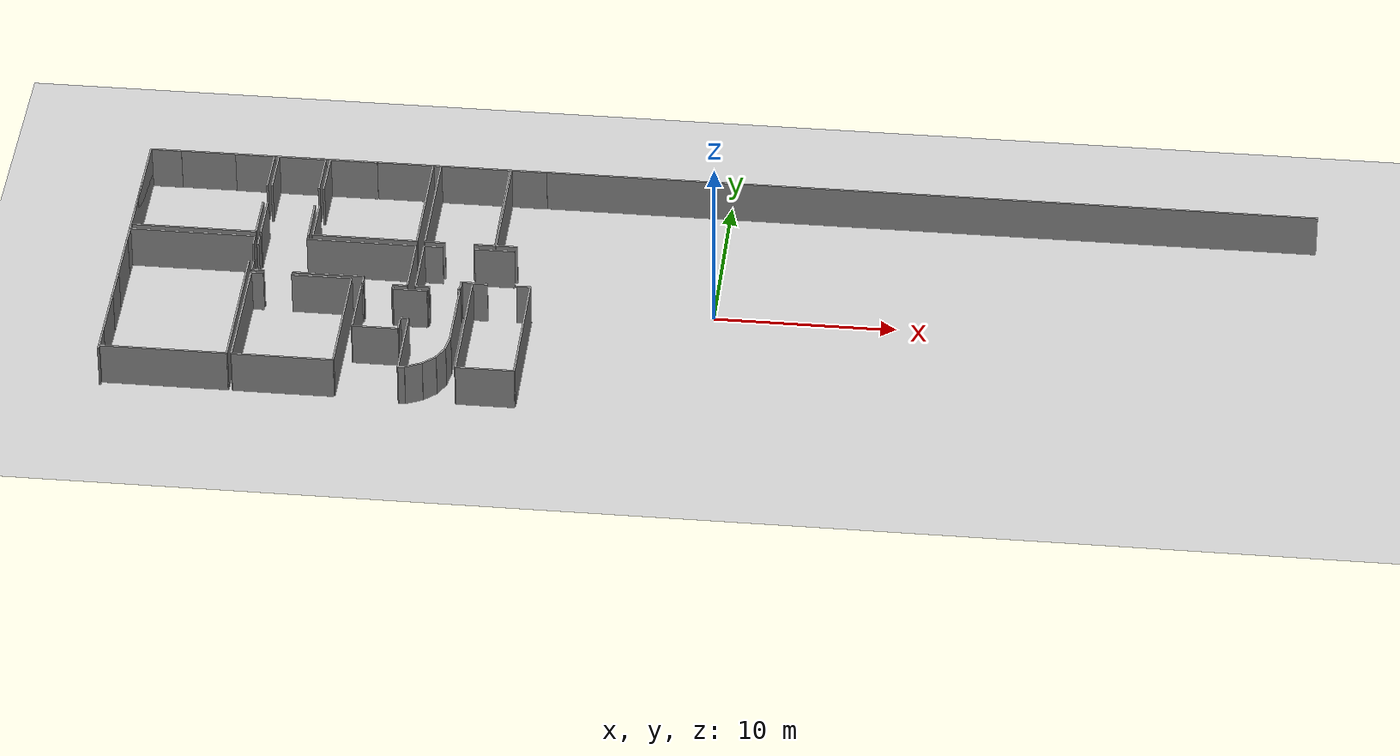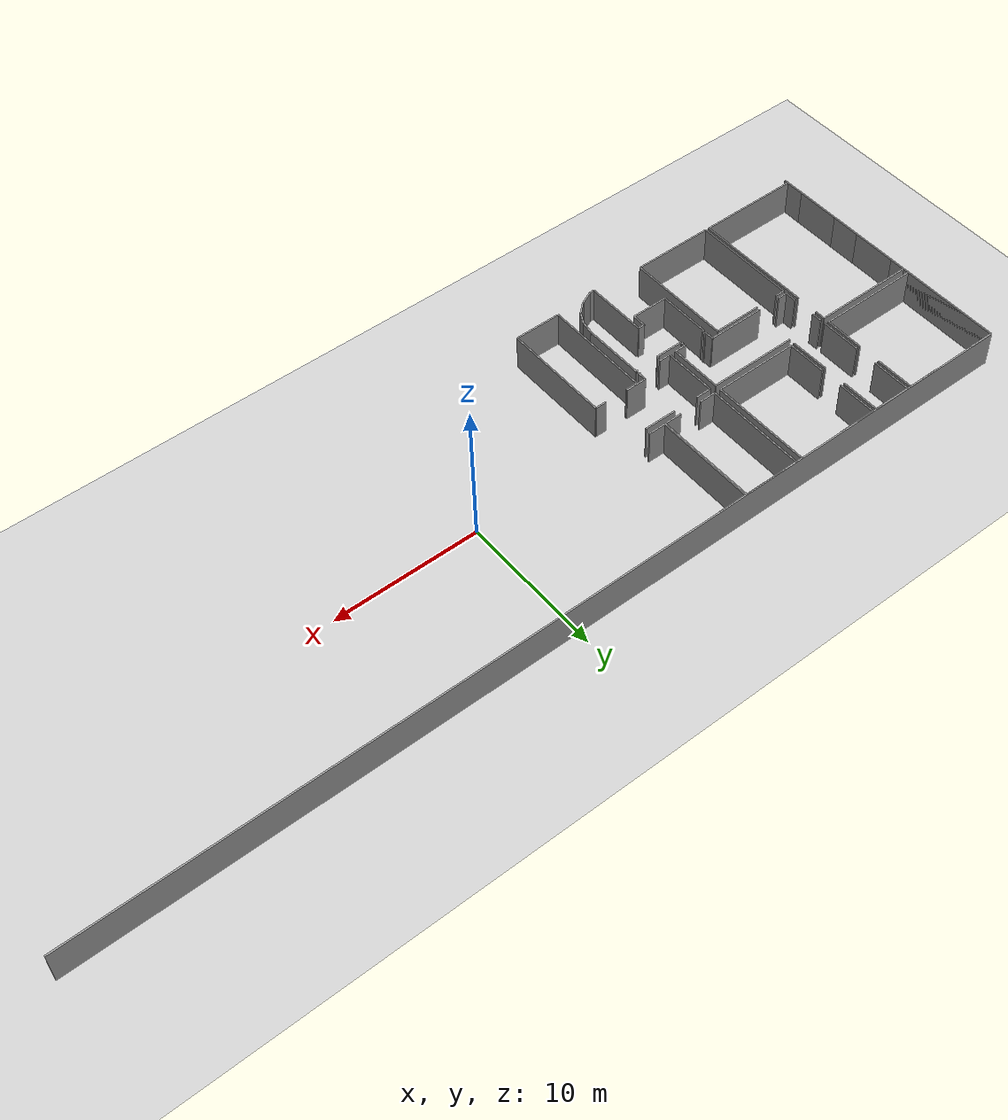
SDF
<sdf version="1.6">
 <world name="default">
  <model name="ground_plane">
   <static>1</static>
   <link name="link">
    <collision name="collision">
     <geometry><plane><normal>0 0 1</normal><size>100 100</size></plane></geometry>
     <surface><friction><ode><mu>100</mu><mu2>50</mu2></ode></friction></surface>
    </collision>
    <visual name="visual">
     <cast_shadows>0</cast_shadows>
     <geometry><plane><normal>0 0 1</normal><size>100 100</size></plane></geometry>
     <material>
      <script><uri>file://media/materials/scripts/gazebo.material</uri><name>Gazebo/Grey</name></script>
     </material>
    </visual>
   </link>
  </model>
  <model name="0510034868_A-40">
   <static>1</static>
   <link name="Wall_0">
    <collision name="Wall_0_Collision">
     <geometry><box><size>6.94066651012 0.1 2.5</size></box></geometry>
     <pose>3.47033325506 0 1.25 0 0 0</pose>
    </collision>
    <visual name="Wall_0_Visual">
     <pose>3.47033325506 0 1.25 0 0 0</pose>
     <geometry><box><size>6.94066651012 0.1 2.5</size></box></geometry>
     <material>
      <script><uri>file://media/materials/scripts/gazebo.material</uri><name>Gazebo/Grey</name></script>
      <ambient>1 1 1 1</ambient>
     </material>
    </visual>
    <pose>6.94066651012 -7.01555528759 0 0 0 3.14159265359</pose>
   </link>
   <link name="Wall_1">
    <collision name="Wall_1_Collision">
     <geometry><box><size>6.99537339671 0.1 2.5</size></box></geometry>
     <pose>3.49768669836 0 1.25 0 0 0</pose>
    </collision>
    <visual name="Wall_1_Visual">
     <pose>3.49768669836 0 1.25 0 0 0</pose>
     <geometry><box><size>6.99537339671 0.1 2.5</size></box></geometry>
     <material>
      <script><uri>file://media/materials/scripts/gazebo.material</uri><name>Gazebo/Grey</name></script>
      <ambient>1 1 1 1</ambient>
     </material>
    </visual>
    <pose>0.0 -7.01555528759 0 0 0 1.57079632679</pose>
   </link>
   <link name="Wall_2">
    <collision name="Wall_2_Collision">
     <geometry><box><size>1.71266826176 0.1 2.5</size></box></geometry>
     <pose>0.856334130878 0 1.25 0 0 0</pose>
    </collision>
    <visual name="Wall_2_Visual">
     <pose>0.856334130878 0 1.25 0 0 0</pose>
     <geometry><box><size>1.71266826176 0.1 2.5</size></box></geometry>
     <material>
      <script><uri>file://media/materials/scripts/gazebo.material</uri><name>Gazebo/Grey</name></script>
      <ambient>1 1 1 1</ambient>
     </material>
    </visual>
    <pose>0.0 -0.0201818908782 0 0 0 0.0</pose>
   </link>
   <link name="Wall_3">
    <collision name="Wall_3_Collision">
     <geometry><box><size>2.17837491353 0.1 2.5</size></box></geometry>
     <pose>1.08918745676 0 1.25 0 0 0</pose>
    </collision>
    <visual name="Wall_3_Visual">
     <pose>1.08918745676 0 1.25 0 0 0</pose>
     <geometry><box><size>2.17837491353 0.1 2.5</size></box></geometry>
     <material>
      <script><uri>file://media/materials/scripts/gazebo.material</uri><name>Gazebo/Grey</name></script>
      <ambient>1 1 1 1</ambient>
     </material>
    </visual>
    <pose>4.75937220357 -0.0201818908782 0 0 0 0.0</pose>
   </link>
   <link name="Wall_4">
    <collision name="Wall_4_Collision">
     <geometry><box><size>2.71782797159 0.1 2.5</size></box></geometry>
     <pose>1.3589139858 0 1.25 0 0 0</pose>
    </collision>
    <visual name="Wall_4_Visual">
     <pose>1.3589139858 0 1.25 0 0 0</pose>
     <geometry><box><size>2.71782797159 0.1 2.5</size></box></geometry>
     <material>
      <script><uri>file://media/materials/scripts/gazebo.material</uri><name>Gazebo/Grey</name></script>
      <ambient>1 1 1 1</ambient>
     </material>
    </visual>
    <pose>6.9377471171 -0.0201818908782 0 0 0 -1.57079632679</pose>
   </link>
   <link name="Wall_5">
    <collision name="Wall_5_Collision">
     <geometry><box><size>2.71986042048 0.1 2.5</size></box></geometry>
     <pose>1.35993021024 0 1.25 0 0 0</pose>
    </collision>
    <visual name="Wall_5_Visual">
     <pose>1.35993021024 0 1.25 0 0 0</pose>
     <geometry><box><size>2.71986042048 0.1 2.5</size></box></geometry>
     <material>
      <script><uri>file://media/materials/scripts/gazebo.material</uri><name>Gazebo/Grey</name></script>
      <ambient>1 1 1 1</ambient>
     </material>
    </visual>
    <pose>6.9377471171 -4.2956964339 0 0 0 -1.56972296525</pose>
   </link>
   <link name="Wall_6">
    <collision name="Wall_6_Collision">
     <geometry><box><size>2.77012318569 0.1 2.5</size></box></geometry>
     <pose>1.38506159285 0 1.25 0 0 0</pose>
    </collision>
    <visual name="Wall_6_Visual">
     <pose>1.38506159285 0 1.25 0 0 0</pose>
     <geometry><box><size>2.77012318569 0.1 2.5</size></box></geometry>
     <material>
      <script><uri>file://media/materials/scripts/gazebo.material</uri><name>Gazebo/Grey</name></script>
      <ambient>1 1 1 1</ambient>
     </material>
    </visual>
    <pose>7.20100020943 -7.06607347985 0 0 0 1.57079632679</pose>
   </link>
   <link name="Wall_7">
    <collision name="Wall_7_Collision">
     <geometry><box><size>2.72607843013 0.1 2.5</size></box></geometry>
     <pose>1.36303921506 0 1.25 0 0 0</pose>
    </collision>
    <visual name="Wall_7_Visual">
     <pose>1.36303921506 0 1.25 0 0 0</pose>
     <geometry><box><size>2.72607843013 0.1 2.5</size></box></geometry>
     <material>
      <script><uri>file://media/materials/scripts/gazebo.material</uri><name>Gazebo/Grey</name></script>
      <ambient>1 1 1 1</ambient>
     </material>
    </visual>
    <pose>7.20100020943 -2.75032208521 0 0 0 1.57079632679</pose>
   </link>
   <link name="Wall_8">
    <collision name="Wall_8_Collision">
     <geometry><box><size>2.62466125521 0.1 2.5</size></box></geometry>
     <pose>1.31233062761 0 1.25 0 0 0</pose>
    </collision>
    <visual name="Wall_8_Visual">
     <pose>1.31233062761 0 1.25 0 0 0</pose>
     <geometry><box><size>2.62466125521 0.1 2.5</size></box></geometry>
     <material>
      <script><uri>file://media/materials/scripts/gazebo.material</uri><name>Gazebo/Grey</name></script>
      <ambient>1 1 1 1</ambient>
     </material>
    </visual>
    <pose>7.20100020943 -0.0242436550801 0 0 0 0.0</pose>
   </link>
   <link name="Wall_9">
    <collision name="Wall_9_Collision">
     <geometry><box><size>2.69206115494 0.1 2.5</size></box></geometry>
     <pose>1.34603057747 0 1.25 0 0 0</pose>
    </collision>
    <visual name="Wall_9_Visual">
     <pose>1.34603057747 0 1.25 0 0 0</pose>
     <geometry><box><size>2.69206115494 0.1 2.5</size></box></geometry>
     <material>
      <script><uri>file://media/materials/scripts/gazebo.material</uri><name>Gazebo/Grey</name></script>
      <ambient>1 1 1 1</ambient>
     </material>
    </visual>
    <pose>9.82566146465 -0.0242436550801 0 0 0 -1.57079632679</pose>
   </link>
   <link name="Wall_10">
    <collision name="Wall_10_Collision">
     <geometry><box><size>2.76565996242 0.1 2.5</size></box></geometry>
     <pose>1.38282998121 0 1.25 0 0 0</pose>
    </collision>
    <visual name="Wall_10_Visual">
     <pose>1.38282998121 0 1.25 0 0 0</pose>
     <geometry><box><size>2.76565996242 0.1 2.5</size></box></geometry>
     <material>
      <script><uri>file://media/materials/scripts/gazebo.material</uri><name>Gazebo/Grey</name></script>
      <ambient>1 1 1 1</ambient>
     </material>
    </visual>
    <pose>9.82566146465 -4.30051977889 0 0 0 -1.56203025797</pose>
   </link>
   <link name="Wall_11">
    <collision name="Wall_11_Collision">
     <geometry><box><size>5.76554735446 0.1 2.5</size></box></geometry>
     <pose>2.88277367723 0 1.25 0 0 0</pose>
    </collision>
    <visual name="Wall_11_Visual">
     <pose>2.88277367723 0 1.25 0 0 0</pose>
     <geometry><box><size>5.76554735446 0.1 2.5</size></box></geometry>
     <material>
      <script><uri>file://media/materials/scripts/gazebo.material</uri><name>Gazebo/Grey</name></script>
      <ambient>1 1 1 1</ambient>
     </material>
    </visual>
    <pose>15.8609353481 -7.01085887273 0 0 0 3.14159265359</pose>
   </link>
   <link name="Wall_12">
    <collision name="Wall_12_Collision">
     <geometry><box><size>2.72582456987 0.1 2.5</size></box></geometry>
     <pose>1.36291228493 0 1.25 0 0 0</pose>
    </collision>
    <visual name="Wall_12_Visual">
     <pose>1.36291228493 0 1.25 0 0 0</pose>
     <geometry><box><size>2.72582456987 0.1 2.5</size></box></geometry>
     <material>
      <script><uri>file://media/materials/scripts/gazebo.material</uri><name>Gazebo/Grey</name></script>
      <ambient>1 1 1 1</ambient>
     </material>
    </visual>
    <pose>10.0953879937 -7.01085887273 0 0 0 1.57079632679</pose>
   </link>
   <link name="Wall_13">
    <collision name="Wall_13_Collision">
     <geometry><box><size>2.73255186682 0.1 2.5</size></box></geometry>
     <pose>1.36627593341 0 1.25 0 0 0</pose>
    </collision>
    <visual name="Wall_13_Visual">
     <pose>1.36627593341 0 1.25 0 0 0</pose>
     <geometry><box><size>2.73255186682 0.1 2.5</size></box></geometry>
     <material>
      <script><uri>file://media/materials/scripts/gazebo.material</uri><name>Gazebo/Grey</name></script>
      <ambient>1 1 1 1</ambient>
     </material>
    </visual>
    <pose>10.0953879937 -2.75590701099 0 0 0 1.57079632679</pose>
   </link>
   <link name="Wall_14">
    <collision name="Wall_14_Collision">
     <geometry><box><size>2.63481566572 0.1 2.5</size></box></geometry>
     <pose>1.31740783286 0 1.25 0 0 0</pose>
    </collision>
    <visual name="Wall_14_Visual">
     <pose>1.31740783286 0 1.25 0 0 0</pose>
     <geometry><box><size>2.63481566572 0.1 2.5</size></box></geometry>
     <material>
      <script><uri>file://media/materials/scripts/gazebo.material</uri><name>Gazebo/Grey</name></script>
      <ambient>1 1 1 1</ambient>
     </material>
    </visual>
    <pose>10.0953879937 -0.0233551441609 0 0 0 0.0</pose>
   </link>
   <link name="Wall_15">
    <collision name="Wall_15_Collision">
     <geometry><box><size>0.0746349172098 0.1 2.5</size></box></geometry>
     <pose>0.0373174586049 0 1.25 0 0 0</pose>
    </collision>
    <visual name="Wall_15_Visual">
     <pose>0.0373174586049 0 1.25 0 0 0</pose>
     <geometry><box><size>0.0746349172098 0.1 2.5</size></box></geometry>
     <material>
      <script><uri>file://media/materials/scripts/gazebo.material</uri><name>Gazebo/Grey</name></script>
      <ambient>1 1 1 1</ambient>
     </material>
    </visual>
    <pose>15.7800808545 -0.0233551441609 0 0 0 0.0</pose>
   </link>
   <link name="Wall_16">
    <collision name="Wall_16_Collision">
     <geometry><box><size>6.98750649659 0.1 2.5</size></box></geometry>
     <pose>3.4937532483 0 1.25 0 0 0</pose>
    </collision>
    <visual name="Wall_16_Visual">
     <pose>3.4937532483 0 1.25 0 0 0</pose>
     <geometry><box><size>6.98750649659 0.1 2.5</size></box></geometry>
     <material>
      <script><uri>file://media/materials/scripts/gazebo.material</uri><name>Gazebo/Grey</name></script>
      <ambient>1 1 1 1</ambient>
     </material>
    </visual>
    <pose>15.8547157717 -0.0233551441609 0 0 0 -1.56990622712</pose>
   </link>
   <link name="Wall_17">
    <collision name="Wall_17_Collision">
     <geometry><box><size>0.821491809833 0.1 2.5</size></box></geometry>
     <pose>0.410745904917 0 1.25 0 0 0</pose>
    </collision>
    <visual name="Wall_17_Visual">
     <pose>0.410745904917 0 1.25 0 0 0</pose>
     <geometry><box><size>0.821491809833 0.1 2.5</size></box></geometry>
     <material>
      <script><uri>file://media/materials/scripts/gazebo.material</uri><name>Gazebo/Grey</name></script>
      <ambient>1 1 1 1</ambient>
     </material>
    </visual>
    <pose>15.8516694486 -11.0769386991 0 0 0 3.14159265359</pose>
   </link>
   <link name="Wall_18">
    <collision name="Wall_18_Collision">
     <geometry><box><size>0.104336567936 0.1 2.5</size></box></geometry>
     <pose>0.0521682839681 0 1.25 0 0 0</pose>
    </collision>
    <visual name="Wall_18_Visual">
     <pose>0.0521682839681 0 1.25 0 0 0</pose>
     <geometry><box><size>0.104336567936 0.1 2.5</size></box></geometry>
     <material>
      <script><uri>file://media/materials/scripts/gazebo.material</uri><name>Gazebo/Grey</name></script>
      <ambient>1 1 1 1</ambient>
     </material>
    </visual>
    <pose>13.4882304036 -11.0769386991 0 0 0 3.14159265359</pose>
   </link>
   <link name="Wall_19">
    <collision name="Wall_19_Collision">
     <geometry><box><size>0.596444687022 0.1 2.5</size></box></geometry>
     <pose>0.298222343511 0 1.25 0 0 0</pose>
    </collision>
    <visual name="Wall_19_Visual">
     <pose>0.298222343511 0 1.25 0 0 0</pose>
     <geometry><box><size>0.596444687022 0.1 2.5</size></box></geometry>
     <material>
      <script><uri>file://media/materials/scripts/gazebo.material</uri><name>Gazebo/Grey</name></script>
      <ambient>1 1 1 1</ambient>
     </material>
    </visual>
    <pose>13.3838938356 -11.0769386991 0 0 0 1.57079632679</pose>
   </link>
   <link name="Wall_20">
    <collision name="Wall_20_Collision">
     <geometry><box><size>3.9235372889 0.1 2.5</size></box></geometry>
     <pose>1.96176864445 0 1.25 0 0 0</pose>
    </collision>
    <visual name="Wall_20_Visual">
     <pose>1.96176864445 0 1.25 0 0 0</pose>
     <geometry><box><size>3.9235372889 0.1 2.5</size></box></geometry>
     <material>
      <script><uri>file://media/materials/scripts/gazebo.material</uri><name>Gazebo/Grey</name></script>
      <ambient>1 1 1 1</ambient>
     </material>
    </visual>
    <pose>13.3838938356 -10.4804940121 0 0 0 3.14159265359</pose>
   </link>
   <link name="Wall_21">
    <collision name="Wall_21_Collision">
     <geometry><box><size>0.692784656686 0.1 2.5</size></box></geometry>
     <pose>0.346392328343 0 1.25 0 0 0</pose>
    </collision>
    <visual name="Wall_21_Visual">
     <pose>0.346392328343 0 1.25 0 0 0</pose>
     <geometry><box><size>0.692784656686 0.1 2.5</size></box></geometry>
     <material>
      <script><uri>file://media/materials/scripts/gazebo.material</uri><name>Gazebo/Grey</name></script>
      <ambient>1 1 1 1</ambient>
     </material>
    </visual>
    <pose>7.90647787925 -10.4804940121 0 0 0 3.14159265359</pose>
   </link>
   <link name="Wall_22">
    <collision name="Wall_22_Collision">
     <geometry><box><size>0.755615071684 0.1 2.5</size></box></geometry>
     <pose>0.377807535842 0 1.25 0 0 0</pose>
    </collision>
    <visual name="Wall_22_Visual">
     <pose>0.377807535842 0 1.25 0 0 0</pose>
     <geometry><box><size>0.755615071684 0.1 2.5</size></box></geometry>
     <material>
      <script><uri>file://media/materials/scripts/gazebo.material</uri><name>Gazebo/Grey</name></script>
      <ambient>1 1 1 1</ambient>
     </material>
    </visual>
    <pose>7.21369322257 -10.4804940121 0 0 0 1.57079632679</pose>
   </link>
   <link name="Wall_23">
    <collision name="Wall_23_Collision">
     <geometry><box><size>0.713728128352 0.1 2.5</size></box></geometry>
     <pose>0.356864064176 0 1.25 0 0 0</pose>
    </collision>
    <visual name="Wall_23_Visual">
     <pose>0.356864064176 0 1.25 0 0 0</pose>
     <geometry><box><size>0.713728128352 0.1 2.5</size></box></geometry>
     <material>
      <script><uri>file://media/materials/scripts/gazebo.material</uri><name>Gazebo/Grey</name></script>
      <ambient>1 1 1 1</ambient>
     </material>
    </visual>
    <pose>7.21369322257 -8.14167941257 0 0 0 1.57079632679</pose>
   </link>
   <link name="Wall_24">
    <collision name="Wall_24_Collision">
     <geometry><box><size>6.04657066518 0.1 2.5</size></box></geometry>
     <pose>3.02328533259 0 1.25 0 0 0</pose>
    </collision>
    <visual name="Wall_24_Visual">
     <pose>3.02328533259 0 1.25 0 0 0</pose>
     <geometry><box><size>6.04657066518 0.1 2.5</size></box></geometry>
     <material>
      <script><uri>file://media/materials/scripts/gazebo.material</uri><name>Gazebo/Grey</name></script>
      <ambient>1 1 1 1</ambient>
     </material>
    </visual>
    <pose>9.81893416769 -7.42795128422 0 0 0 0.0</pose>
   </link>
   <link name="Wall_25">
    <collision name="Wall_25_Collision">
     <geometry><box><size>3.64901364368 0.1 2.5</size></box></geometry>
     <pose>1.82450682184 0 1.25 0 0 0</pose>
    </collision>
    <visual name="Wall_25_Visual">
     <pose>1.82450682184 0 1.25 0 0 0</pose>
     <geometry><box><size>3.64901364368 0.1 2.5</size></box></geometry>
     <material>
      <script><uri>file://media/materials/scripts/gazebo.material</uri><name>Gazebo/Grey</name></script>
      <ambient>1 1 1 1</ambient>
     </material>
    </visual>
    <pose>15.8655048329 -7.42795128422 0 0 0 -1.57458787673</pose>
   </link>
   <link name="Wall_26">
    <collision name="Wall_26_Collision">
     <geometry><box><size>6.95399417391 0.1 2.5</size></box></geometry>
     <pose>3.47699708695 0 1.25 0 0 0</pose>
    </collision>
    <visual name="Wall_26_Visual">
     <pose>3.47699708695 0 1.25 0 0 0</pose>
     <geometry><box><size>6.95399417391 0.1 2.5</size></box></geometry>
     <material>
      <script><uri>file://media/materials/scripts/gazebo.material</uri><name>Gazebo/Grey</name></script>
      <ambient>1 1 1 1</ambient>
     </material>
    </visual>
    <pose>6.95691356693 -17.9909498816 0 0 0 3.14159265359</pose>
   </link>
   <link name="Wall_27">
    <collision name="Wall_27_Collision">
     <geometry><box><size>1.31385378918 0.1 2.5</size></box></geometry>
     <pose>0.656926894591 0 1.25 0 0 0</pose>
    </collision>
    <visual name="Wall_27_Visual">
     <pose>0.656926894591 0 1.25 0 0 0</pose>
     <geometry><box><size>1.31385378918 0.1 2.5</size></box></geometry>
     <material>
      <script><uri>file://media/materials/scripts/gazebo.material</uri><name>Gazebo/Grey</name></script>
      <ambient>1 1 1 1</ambient>
     </material>
    </visual>
    <pose>0.00291939302011 -17.9909498816 0 0 0 1.57079632679</pose>
   </link>
   <link name="Wall_28">
    <collision name="Wall_28_Collision">
     <geometry><box><size>2.02237778215 0.1 2.5</size></box></geometry>
     <pose>1.01118889107 0 1.25 0 0 0</pose>
    </collision>
    <visual name="Wall_28_Visual">
     <pose>1.01118889107 0 1.25 0 0 0</pose>
     <geometry><box><size>2.02237778215 0.1 2.5</size></box></geometry>
     <material>
      <script><uri>file://media/materials/scripts/gazebo.material</uri><name>Gazebo/Grey</name></script>
      <ambient>1 1 1 1</ambient>
     </material>
    </visual>
    <pose>0.00291939302011 -13.6057677052 0 0 0 1.57079632679</pose>
   </link>
   <link name="Wall_29">
    <collision name="Wall_29_Collision">
     <geometry><box><size>1.07014793707 0.1 2.5</size></box></geometry>
     <pose>0.535073968534 0 1.25 0 0 0</pose>
    </collision>
    <visual name="Wall_29_Visual">
     <pose>0.535073968534 0 1.25 0 0 0</pose>
     <geometry><box><size>1.07014793707 0.1 2.5</size></box></geometry>
     <material>
      <script><uri>file://media/materials/scripts/gazebo.material</uri><name>Gazebo/Grey</name></script>
      <ambient>1 1 1 1</ambient>
     </material>
    </visual>
    <pose>0.00291939302011 -8.49949545273 0 0 0 1.57079632679</pose>
   </link>
   <link name="Wall_30">
    <collision name="Wall_30_Collision">
     <geometry><box><size>6.93863562802 0.1 2.5</size></box></geometry>
     <pose>3.46931781401 0 1.25 0 0 0</pose>
    </collision>
    <visual name="Wall_30_Visual">
     <pose>3.46931781401 0 1.25 0 0 0</pose>
     <geometry><box><size>6.93863562802 0.1 2.5</size></box></geometry>
     <material>
      <script><uri>file://media/materials/scripts/gazebo.material</uri><name>Gazebo/Grey</name></script>
      <ambient>1 1 1 1</ambient>
     </material>
    </visual>
    <pose>0.00291939302011 -7.42934751566 0 0 0 0.0</pose>
   </link>
   <link name="Wall_31">
    <collision name="Wall_31_Collision">
     <geometry><box><size>0.717282172028 0.1 2.5</size></box></geometry>
     <pose>0.358641086014 0 1.25 0 0 0</pose>
    </collision>
    <visual name="Wall_31_Visual">
     <pose>0.358641086014 0 1.25 0 0 0</pose>
     <geometry><box><size>0.717282172028 0.1 2.5</size></box></geometry>
     <material>
      <script><uri>file://media/materials/scripts/gazebo.material</uri><name>Gazebo/Grey</name></script>
      <ambient>1 1 1 1</ambient>
     </material>
    </visual>
    <pose>6.94155502104 -7.42934751566 0 0 0 -1.57079632679</pose>
   </link>
   <link name="Wall_32">
    <collision name="Wall_32_Collision">
     <geometry><box><size>8.28398232719 0.1 2.5</size></box></geometry>
     <pose>4.14199116359 0 1.25 0 0 0</pose>
    </collision>
    <visual name="Wall_32_Visual">
     <pose>4.14199116359 0 1.25 0 0 0</pose>
     <geometry><box><size>8.28398232719 0.1 2.5</size></box></geometry>
     <material>
      <script><uri>file://media/materials/scripts/gazebo.material</uri><name>Gazebo/Grey</name></script>
      <ambient>1 1 1 1</ambient>
     </material>
    </visual>
    <pose>6.94155502104 -9.70698179187 0 0 0 -1.56894232058</pose>
   </link>
   <link name="Wall_33">
    <collision name="Wall_33_Collision">
     <geometry><box><size>5.54164260283 0.1 2.5</size></box></geometry>
     <pose>2.77082130141 0 1.25 0 0 0</pose>
    </collision>
    <visual name="Wall_33_Visual">
     <pose>2.77082130141 0 1.25 0 0 0</pose>
     <geometry><box><size>5.54164260283 0.1 2.5</size></box></geometry>
     <material>
      <script><uri>file://media/materials/scripts/gazebo.material</uri><name>Gazebo/Grey</name></script>
      <ambient>1 1 1 1</ambient>
     </material>
    </visual>
    <pose>12.7470853669 -18.0040236852 0 0 0 3.14159265359</pose>
   </link>
   <link name="Wall_34">
    <collision name="Wall_34_Collision">
     <geometry><box><size>7.28122005242 0.1 2.5</size></box></geometry>
     <pose>3.64061002621 0 1.25 0 0 0</pose>
    </collision>
    <visual name="Wall_34_Visual">
     <pose>3.64061002621 0 1.25 0 0 0</pose>
     <geometry><box><size>7.28122005242 0.1 2.5</size></box></geometry>
     <material>
      <script><uri>file://media/materials/scripts/gazebo.material</uri><name>Gazebo/Grey</name></script>
      <ambient>1 1 1 1</ambient>
     </material>
    </visual>
    <pose>7.20544276403 -18.0040236852 0 0 0 1.57079632679</pose>
   </link>
   <link name="Wall_35">
    <collision name="Wall_35_Collision">
     <geometry><box><size>0.677806901191 0.1 2.5</size></box></geometry>
     <pose>0.338903450596 0 1.25 0 0 0</pose>
    </collision>
    <visual name="Wall_35_Visual">
     <pose>0.338903450596 0 1.25 0 0 0</pose>
     <geometry><box><size>0.677806901191 0.1 2.5</size></box></geometry>
     <material>
      <script><uri>file://media/materials/scripts/gazebo.material</uri><name>Gazebo/Grey</name></script>
      <ambient>1 1 1 1</ambient>
     </material>
    </visual>
    <pose>7.20544276403 -10.7228036327 0 0 0 0.0</pose>
   </link>
   <link name="Wall_36">
    <collision name="Wall_36_Collision">
     <geometry><box><size>3.29815253194 0.1 2.5</size></box></geometry>
     <pose>1.64907626597 0 1.25 0 0 0</pose>
    </collision>
    <visual name="Wall_36_Visual">
     <pose>1.64907626597 0 1.25 0 0 0</pose>
     <geometry><box><size>3.29815253194 0.1 2.5</size></box></geometry>
     <material>
      <script><uri>file://media/materials/scripts/gazebo.material</uri><name>Gazebo/Grey</name></script>
      <ambient>1 1 1 1</ambient>
     </material>
    </visual>
    <pose>9.44207860783 -10.7228036327 0 0 0 0.0</pose>
   </link>
   <link name="Wall_37">
    <collision name="Wall_37_Collision">
     <geometry><box><size>7.28122327856 0.1 2.5</size></box></geometry>
     <pose>3.64061163928 0 1.25 0 0 0</pose>
    </collision>
    <visual name="Wall_37_Visual">
     <pose>3.64061163928 0 1.25 0 0 0</pose>
     <geometry><box><size>7.28122327856 0.1 2.5</size></box></geometry>
     <material>
      <script><uri>file://media/materials/scripts/gazebo.material</uri><name>Gazebo/Grey</name></script>
      <ambient>1 1 1 1</ambient>
     </material>
    </visual>
    <pose>12.7402311398 -10.7228036327 0 0 0 -1.56985497012</pose>
   </link>
   <link name="Wall_38">
    <collision name="Wall_38_Collision">
     <geometry><box><size>4.2997581981 0.1 2.5</size></box></geometry>
     <pose>2.14987909905 0 1.25 0 0 0</pose>
    </collision>
    <visual name="Wall_38_Visual">
     <pose>2.14987909905 0 1.25 0 0 0</pose>
     <geometry><box><size>4.2997581981 0.1 2.5</size></box></geometry>
     <material>
      <script><uri>file://media/materials/scripts/gazebo.material</uri><name>Gazebo/Grey</name></script>
      <ambient>1 1 1 1</ambient>
     </material>
    </visual>
    <pose>16.2973211396 -18.2769234675 0 0 0 1.57079632679</pose>
   </link>
   <link name="Wall_39">
    <collision name="Wall_39_Collision">
     <geometry><box><size>0.438289743411 0.1 2.5</size></box></geometry>
     <pose>0.219144871705 0 1.25 0 0 0</pose>
    </collision>
    <visual name="Wall_39_Visual">
     <pose>0.219144871705 0 1.25 0 0 0</pose>
     <geometry><box><size>0.438289743411 0.1 2.5</size></box></geometry>
     <material>
      <script><uri>file://media/materials/scripts/gazebo.material</uri><name>Gazebo/Grey</name></script>
      <ambient>1 1 1 1</ambient>
     </material>
    </visual>
    <pose>16.2973211396 -13.9771652694 0 0 0 3.14159265359</pose>
   </link>
   <link name="Wall_40">
    <collision name="Wall_40_Collision">
     <geometry><box><size>0.947660360355 0.1 2.5</size></box></geometry>
     <pose>0.473830180177 0 1.25 0 0 0</pose>
    </collision>
    <visual name="Wall_40_Visual">
     <pose>0.473830180177 0 1.25 0 0 0</pose>
     <geometry><box><size>0.947660360355 0.1 2.5</size></box></geometry>
     <material>
      <script><uri>file://media/materials/scripts/gazebo.material</uri><name>Gazebo/Grey</name></script>
      <ambient>1 1 1 1</ambient>
     </material>
    </visual>
    <pose>15.8590313962 -13.9771652694 0 0 0 -1.57079632679</pose>
   </link>
   <link name="Wall_41">
    <collision name="Wall_41_Collision">
     <geometry><box><size>2.51105878769 0.1 2.5</size></box></geometry>
     <pose>1.25552939385 0 1.25 0 0 0</pose>
    </collision>
    <visual name="Wall_41_Visual">
     <pose>1.25552939385 0 1.25 0 0 0</pose>
     <geometry><box><size>2.51105878769 0.1 2.5</size></box></geometry>
     <material>
      <script><uri>file://media/materials/scripts/gazebo.material</uri><name>Gazebo/Grey</name></script>
      <ambient>1 1 1 1</ambient>
     </material>
    </visual>
    <pose>15.8590313962 -14.9248256297 0 0 0 3.14159265359</pose>
   </link>
   <link name="Wall_42">
    <collision name="Wall_42_Collision">
     <geometry><box><size>3.62893245413 0.1 2.5</size></box></geometry>
     <pose>1.81446622707 0 1.25 0 0 0</pose>
    </collision>
    <visual name="Wall_42_Visual">
     <pose>1.81446622707 0 1.25 0 0 0</pose>
     <geometry><box><size>3.62893245413 0.1 2.5</size></box></geometry>
     <material>
      <script><uri>file://media/materials/scripts/gazebo.material</uri><name>Gazebo/Grey</name></script>
      <ambient>1 1 1 1</ambient>
     </material>
    </visual>
    <pose>13.3479726085 -14.9248256297 0 0 0 1.57079632679</pose>
   </link>
   <link name="Wall_43">
    <collision name="Wall_43_Collision">
     <geometry><box><size>0.136576821289 0.1 2.5</size></box></geometry>
     <pose>0.0682884106444 0 1.25 0 0 0</pose>
    </collision>
    <visual name="Wall_43_Visual">
     <pose>0.0682884106444 0 1.25 0 0 0</pose>
     <geometry><box><size>0.136576821289 0.1 2.5</size></box></geometry>
     <material>
      <script><uri>file://media/materials/scripts/gazebo.material</uri><name>Gazebo/Grey</name></script>
      <ambient>1 1 1 1</ambient>
     </material>
    </visual>
    <pose>13.3479726085 -11.2958931756 0 0 0 0.0</pose>
   </link>
   <link name="Wall_44">
    <collision name="Wall_44_Collision">
     <geometry><box><size>0.116014140017 0.1 2.5</size></box></geometry>
     <pose>0.0580070700083 0 1.25 0 0 0</pose>
    </collision>
    <visual name="Wall_44_Visual">
     <pose>0.0580070700083 0 1.25 0 0 0</pose>
     <geometry><box><size>0.116014140017 0.1 2.5</size></box></geometry>
     <material>
      <script><uri>file://media/materials/scripts/gazebo.material</uri><name>Gazebo/Grey</name></script>
      <ambient>1 1 1 1</ambient>
     </material>
    </visual>
    <pose>15.0173576955 -11.2958931756 0 0 0 0.0</pose>
   </link>
   <link name="Wall_45">
    <collision name="Wall_45_Collision">
     <geometry><box><size>0.139496214309 0.1 2.5</size></box></geometry>
     <pose>0.0697481071544 0 1.25 0 0 0</pose>
    </collision>
    <visual name="Wall_45_Visual">
     <pose>0.0697481071544 0 1.25 0 0 0</pose>
     <geometry><box><size>0.139496214309 0.1 2.5</size></box></geometry>
     <material>
      <script><uri>file://media/materials/scripts/gazebo.material</uri><name>Gazebo/Grey</name></script>
      <ambient>1 1 1 1</ambient>
     </material>
    </visual>
    <pose>15.1333718355 -11.2958931756 0 0 0 -1.57079632679</pose>
   </link>
   <link name="Wall_46">
    <collision name="Wall_46_Collision">
     <geometry><box><size>1.85330684725 0.1 2.5</size></box></geometry>
     <pose>0.926653423623 0 1.25 0 0 0</pose>
    </collision>
    <visual name="Wall_46_Visual">
     <pose>0.926653423623 0 1.25 0 0 0</pose>
     <geometry><box><size>1.85330684725 0.1 2.5</size></box></geometry>
     <material>
      <script><uri>file://media/materials/scripts/gazebo.material</uri><name>Gazebo/Grey</name></script>
      <ambient>1 1 1 1</ambient>
     </material>
    </visual>
    <pose>15.1333718355 -11.4353893899 0 0 0 0.0</pose>
   </link>
   <link name="Wall_47">
    <collision name="Wall_47_Collision">
     <geometry><box><size>0.137846122602 0.1 2.5</size></box></geometry>
     <pose>0.0689230613009 0 1.25 0 0 0</pose>
    </collision>
    <visual name="Wall_47_Visual">
     <pose>0.0689230613009 0 1.25 0 0 0</pose>
     <geometry><box><size>0.137846122602 0.1 2.5</size></box></geometry>
     <material>
      <script><uri>file://media/materials/scripts/gazebo.material</uri><name>Gazebo/Grey</name></script>
      <ambient>1 1 1 1</ambient>
     </material>
    </visual>
    <pose>16.9866786827 -11.4353893899 0 0 0 1.57079632679</pose>
   </link>
   <link name="Wall_48">
    <collision name="Wall_48_Collision">
     <geometry><box><size>0.114617908572 0.1 2.5</size></box></geometry>
     <pose>0.0573089542861 0 1.25 0 0 0</pose>
    </collision>
    <visual name="Wall_48_Visual">
     <pose>0.0573089542861 0 1.25 0 0 0</pose>
     <geometry><box><size>0.114617908572 0.1 2.5</size></box></geometry>
     <material>
      <script><uri>file://media/materials/scripts/gazebo.material</uri><name>Gazebo/Grey</name></script>
      <ambient>1 1 1 1</ambient>
     </material>
    </visual>
    <pose>16.9866786827 -11.2975432673 0 0 0 0.0</pose>
   </link>
   <link name="Wall_49">
    <collision name="Wall_49_Collision">
     <geometry><box><size>0.131753476299 0.1 2.5</size></box></geometry>
     <pose>0.0658767381495 0 1.25 0 0 0</pose>
    </collision>
    <visual name="Wall_49_Visual">
     <pose>0.0658767381495 0 1.25 0 0 0</pose>
     <geometry><box><size>0.131753476299 0.1 2.5</size></box></geometry>
     <material>
      <script><uri>file://media/materials/scripts/gazebo.material</uri><name>Gazebo/Grey</name></script>
      <ambient>1 1 1 1</ambient>
     </material>
    </visual>
    <pose>18.6409590841 -11.2975432673 0 0 0 0.0</pose>
   </link>
   <link name="Wall_50">
    <collision name="Wall_50_Collision">
     <geometry><box><size>4.22613872194 0.1 2.5</size></box></geometry>
     <pose>2.11306936097 0 1.25 0 0 0</pose>
    </collision>
    <visual name="Wall_50_Visual">
     <pose>2.11306936097 0 1.25 0 0 0</pose>
     <geometry><box><size>4.22613872194 0.1 2.5</size></box></geometry>
     <material>
      <script><uri>file://media/materials/scripts/gazebo.material</uri><name>Gazebo/Grey</name></script>
      <ambient>1 1 1 1</ambient>
     </material>
    </visual>
    <pose>18.7727125604 -11.2975432673 0 0 0 -1.57079632679</pose>
   </link>
   <link name="Wall_51">
    <collision name="Wall_51_Collision">
     <geometry><box><size>0.953298017298 0.1 2.5</size></box></geometry>
     <pose>0.476649008649 0 1.25 0 0 0</pose>
    </collision>
    <visual name="Wall_51_Visual">
     <pose>0.476649008649 0 1.25 0 0 0</pose>
     <geometry><box><size>0.953298017298 0.1 2.5</size></box></geometry>
     <material>
      <script><uri>file://media/materials/scripts/gazebo.material</uri><name>Gazebo/Grey</name></script>
      <ambient>1 1 1 1</ambient>
     </material>
    </visual>
    <pose>18.7727125604 -15.5236819892 0 0 0 -1.73773994143</pose>
   </link>
   <link name="Wall_52">
    <collision name="Wall_52_Collision">
     <geometry><box><size>0.875289514943 0.1 2.5</size></box></geometry>
     <pose>0.437644757471 0 1.25 0 0 0</pose>
    </collision>
    <visual name="Wall_52_Visual">
     <pose>0.437644757471 0 1.25 0 0 0</pose>
     <geometry><box><size>0.875289514943 0.1 2.5</size></box></geometry>
     <material>
      <script><uri>file://media/materials/scripts/gazebo.material</uri><name>Gazebo/Grey</name></script>
      <ambient>1 1 1 1</ambient>
     </material>
    </visual>
    <pose>18.6143037565 -16.4637265417 0 0 0 -2.05876609286</pose>
   </link>
   <link name="Wall_53">
    <collision name="Wall_53_Collision">
     <geometry><box><size>0.892347621154 0.1 2.5</size></box></geometry>
     <pose>0.446173810577 0 1.25 0 0 0</pose>
    </collision>
    <visual name="Wall_53_Visual">
     <pose>0.446173810577 0 1.25 0 0 0</pose>
     <geometry><box><size>0.892347621154 0.1 2.5</size></box></geometry>
     <material>
      <script><uri>file://media/materials/scripts/gazebo.material</uri><name>Gazebo/Grey</name></script>
      <ambient>1 1 1 1</ambient>
     </material>
    </visual>
    <pose>18.203938642 -17.2368579715 0 0 0 -2.41678127182</pose>
   </link>
   <link name="Wall_54">
    <collision name="Wall_54_Collision">
     <geometry><box><size>0.982272339876 0.1 2.5</size></box></geometry>
     <pose>0.491136169938 0 1.25 0 0 0</pose>
    </collision>
    <visual name="Wall_54_Visual">
     <pose>0.491136169938 0 1.25 0 0 0</pose>
     <geometry><box><size>0.982272339876 0.1 2.5</size></box></geometry>
     <material>
      <script><uri>file://media/materials/scripts/gazebo.material</uri><name>Gazebo/Grey</name></script>
      <ambient>1 1 1 1</ambient>
     </material>
    </visual>
    <pose>17.5359053609 -17.8284793136 0 0 0 -2.71060183179</pose>
   </link>
   <link name="Wall_55">
    <collision name="Wall_55_Collision">
     <geometry><box><size>0.348226725462 0.1 2.5</size></box></geometry>
     <pose>0.174113362731 0 1.25 0 0 0</pose>
    </collision>
    <visual name="Wall_55_Visual">
     <pose>0.174113362731 0 1.25 0 0 0</pose>
     <geometry><box><size>0.348226725462 0.1 2.5</size></box></geometry>
     <material>
      <script><uri>file://media/materials/scripts/gazebo.material</uri><name>Gazebo/Grey</name></script>
      <ambient>1 1 1 1</ambient>
     </material>
    </visual>
    <pose>16.6434596077 -18.2388444281 0 0 0 -3.03202225725</pose>
   </link>
   <link name="Wall_67">
    <collision name="Wall_67_Collision">
     <geometry><box><size>1.4359605755 0.1 2.5</size></box></geometry>
     <pose>0.717980287751 0 1.25 0 0 0</pose>
    </collision>
    <visual name="Wall_67_Visual">
     <pose>0.717980287751 0 1.25 0 0 0</pose>
     <geometry><box><size>1.4359605755 0.1 2.5</size></box></geometry>
     <material>
      <script><uri>file://media/materials/scripts/gazebo.material</uri><name>Gazebo/Grey</name></script>
      <ambient>1 1 1 1</ambient>
     </material>
    </visual>
    <pose>20.1994072363 -10.4740205754 0 0 0 3.14159265359</pose>
   </link>
   <link name="Wall_68">
    <collision name="Wall_68_Collision">
     <geometry><box><size>0.595175385709 0.1 2.5</size></box></geometry>
     <pose>0.297587692854 0 1.25 0 0 0</pose>
    </collision>
    <visual name="Wall_68_Visual">
     <pose>0.297587692854 0 1.25 0 0 0</pose>
     <geometry><box><size>0.595175385709 0.1 2.5</size></box></geometry>
     <material>
      <script><uri>file://media/materials/scripts/gazebo.material</uri><name>Gazebo/Grey</name></script>
      <ambient>1 1 1 1</ambient>
     </material>
    </visual>
    <pose>18.7634466608 -10.4740205754 0 0 0 -1.57079632679</pose>
   </link>
   <link name="Wall_69">
    <collision name="Wall_69_Collision">
     <geometry><box><size>0.11246009634 0.1 2.5</size></box></geometry>
     <pose>0.05623004817 0 1.25 0 0 0</pose>
    </collision>
    <visual name="Wall_69_Visual">
     <pose>0.05623004817 0 1.25 0 0 0</pose>
     <geometry><box><size>0.11246009634 0.1 2.5</size></box></geometry>
     <material>
      <script><uri>file://media/materials/scripts/gazebo.material</uri><name>Gazebo/Grey</name></script>
      <ambient>1 1 1 1</ambient>
     </material>
    </visual>
    <pose>18.7634466608 -11.0691959611 0 0 0 3.14159265359</pose>
   </link>
   <link name="Wall_70">
    <collision name="Wall_70_Collision">
     <geometry><box><size>0.814002932086 0.1 2.5</size></box></geometry>
     <pose>0.407001466043 0 1.25 0 0 0</pose>
    </collision>
    <visual name="Wall_70_Visual">
     <pose>0.407001466043 0 1.25 0 0 0</pose>
     <geometry><box><size>0.814002932086 0.1 2.5</size></box></geometry>
     <material>
      <script><uri>file://media/materials/scripts/gazebo.material</uri><name>Gazebo/Grey</name></script>
      <ambient>1 1 1 1</ambient>
     </material>
    </visual>
    <pose>17.1198283905 -11.0691959611 0 0 0 3.14159265359</pose>
   </link>
   <link name="Wall_71">
    <collision name="Wall_71_Collision">
     <geometry><box><size>3.64530644107 0.1 2.5</size></box></geometry>
     <pose>1.82265322053 0 1.25 0 0 0</pose>
    </collision>
    <visual name="Wall_71_Visual">
     <pose>1.82265322053 0 1.25 0 0 0</pose>
     <geometry><box><size>3.64530644107 0.1 2.5</size></box></geometry>
     <material>
      <script><uri>file://media/materials/scripts/gazebo.material</uri><name>Gazebo/Grey</name></script>
      <ambient>1 1 1 1</ambient>
     </material>
    </visual>
    <pose>16.3058254584 -11.0691959611 0 0 0 1.57079632679</pose>
   </link>
   <link name="Wall_72">
    <collision name="Wall_72_Collision">
     <geometry><box><size>1.04006549595 0.1 2.5</size></box></geometry>
     <pose>0.520032747974 0 1.25 0 0 0</pose>
    </collision>
    <visual name="Wall_72_Visual">
     <pose>0.520032747974 0 1.25 0 0 0</pose>
     <geometry><box><size>1.04006549595 0.1 2.5</size></box></geometry>
     <material>
      <script><uri>file://media/materials/scripts/gazebo.material</uri><name>Gazebo/Grey</name></script>
      <ambient>1 1 1 1</ambient>
     </material>
    </visual>
    <pose>16.3058254584 -7.42388952001 0 0 0 0.0</pose>
   </link>
   <link name="Wall_73">
    <collision name="Wall_73_Collision">
     <geometry><box><size>2.20921893544 0.1 2.5</size></box></geometry>
     <pose>1.10460946772 0 1.25 0 0 0</pose>
    </collision>
    <visual name="Wall_73_Visual">
     <pose>1.10460946772 0 1.25 0 0 0</pose>
     <geometry><box><size>2.20921893544 0.1 2.5</size></box></geometry>
     <material>
      <script><uri>file://media/materials/scripts/gazebo.material</uri><name>Gazebo/Grey</name></script>
      <ambient>1 1 1 1</ambient>
     </material>
    </visual>
    <pose>19.1090774083 -7.42388952001 0 0 0 0.0</pose>
   </link>
   <link name="Wall_82">
    <collision name="Wall_82_Collision">
     <geometry><box><size>1.19720499851 0.1 2.5</size></box></geometry>
     <pose>0.598602499254 0 1.25 0 0 0</pose>
    </collision>
    <visual name="Wall_82_Visual">
     <pose>0.598602499254 0 1.25 0 0 0</pose>
     <geometry><box><size>1.19720499851 0.1 2.5</size></box></geometry>
     <material>
      <script><uri>file://media/materials/scripts/gazebo.material</uri><name>Gazebo/Grey</name></script>
      <ambient>1 1 1 1</ambient>
     </material>
    </visual>
    <pose>20.1931876599 -7.01555528759 0 0 0 3.14159265359</pose>
   </link>
   <link name="Wall_83">
    <collision name="Wall_83_Collision">
     <geometry><box><size>1.13945178876 0.1 2.5</size></box></geometry>
     <pose>0.569725894381 0 1.25 0 0 0</pose>
    </collision>
    <visual name="Wall_83_Visual">
     <pose>0.569725894381 0 1.25 0 0 0</pose>
     <geometry><box><size>1.13945178876 0.1 2.5</size></box></geometry>
     <material>
      <script><uri>file://media/materials/scripts/gazebo.material</uri><name>Gazebo/Grey</name></script>
      <ambient>1 1 1 1</ambient>
     </material>
    </visual>
    <pose>17.4410885528 -7.01555528759 0 0 0 3.14159265359</pose>
   </link>
   <link name="Wall_84">
    <collision name="Wall_84_Collision">
     <geometry><box><size>7.011112733 0.1 2.5</size></box></geometry>
     <pose>3.5055563665 0 1.25 0 0 0</pose>
    </collision>
    <visual name="Wall_84_Visual">
     <pose>3.5055563665 0 1.25 0 0 0</pose>
     <geometry><box><size>7.011112733 0.1 2.5</size></box></geometry>
     <material>
      <script><uri>file://media/materials/scripts/gazebo.material</uri><name>Gazebo/Grey</name></script>
      <ambient>1 1 1 1</ambient>
     </material>
    </visual>
    <pose>16.301636764 -7.01555528759 0 0 0 1.57079632679</pose>
   </link>
   <link name="Wall_85">
    <collision name="Wall_85_Collision">
     <geometry><box><size>3.85994529311 0.1 2.5</size></box></geometry>
     <pose>1.92997264656 0 1.25 0 0 0</pose>
    </collision>
    <visual name="Wall_85_Visual">
     <pose>1.92997264656 0 1.25 0 0 0</pose>
     <geometry><box><size>3.85994529311 0.1 2.5</size></box></geometry>
     <material>
      <script><uri>file://media/materials/scripts/gazebo.material</uri><name>Gazebo/Grey</name></script>
      <ambient>1 1 1 1</ambient>
     </material>
    </visual>
    <pose>16.301636764 -0.00444255459583 0 0 0 0.0</pose>
   </link>
   <link name="Wall_86">
    <collision name="Wall_86_Collision">
     <geometry><box><size>7.01118397055 0.1 2.5</size></box></geometry>
     <pose>3.50559198528 0 1.25 0 0 0</pose>
    </collision>
    <visual name="Wall_86_Visual">
     <pose>3.50559198528 0 1.25 0 0 0</pose>
     <geometry><box><size>7.01118397055 0.1 2.5</size></box></geometry>
     <material>
      <script><uri>file://media/materials/scripts/gazebo.material</uri><name>Gazebo/Grey</name></script>
      <ambient>1 1 1 1</ambient>
     </material>
    </visual>
    <pose>20.1615820572 -0.00444255459583 0 0 0 -1.56628842772</pose>
   </link>
   <link name="Wall_88">
    <collision name="Wall_88_Collision">
     <geometry><box><size>1.18641593735 0.1 2.5</size></box></geometry>
     <pose>0.593207968674 0 1.25 0 0 0</pose>
    </collision>
    <visual name="Wall_88_Visual">
     <pose>0.593207968674 0 1.25 0 0 0</pose>
     <geometry><box><size>1.18641593735 0.1 2.5</size></box></geometry>
     <material>
      <script><uri>file://media/materials/scripts/gazebo.material</uri><name>Gazebo/Grey</name></script>
      <ambient>1 1 1 1</ambient>
     </material>
    </visual>
    <pose>21.4237752829 -7.00298920459 0 0 0 3.14159265359</pose>
   </link>
   <link name="Wall_89">
    <collision name="Wall_89_Collision">
     <geometry><box><size>6.98750372857 0.1 2.5</size></box></geometry>
     <pose>3.49375186429 0 1.25 0 0 0</pose>
    </collision>
    <visual name="Wall_89_Visual">
     <pose>3.49375186429 0 1.25 0 0 0</pose>
     <geometry><box><size>6.98750372857 0.1 2.5</size></box></geometry>
     <material>
      <script><uri>file://media/materials/scripts/gazebo.material</uri><name>Gazebo/Grey</name></script>
      <ambient>1 1 1 1</ambient>
     </material>
    </visual>
    <pose>20.2373593455 -7.00298920459 0 0 0 1.57079632679</pose>
   </link>
   <link name="Wall_90">
    <collision name="Wall_90_Collision">
     <geometry><box><size>1.98912208775 0.1 2.5</size></box></geometry>
     <pose>0.994561043873 0 1.25 0 0 0</pose>
    </collision>
    <visual name="Wall_90_Visual">
     <pose>0.994561043873 0 1.25 0 0 0</pose>
     <geometry><box><size>1.98912208775 0.1 2.5</size></box></geometry>
     <material>
      <script><uri>file://media/materials/scripts/gazebo.material</uri><name>Gazebo/Grey</name></script>
      <ambient>1 1 1 1</ambient>
     </material>
    </visual>
    <pose>20.2373593455 -0.0154854760197 0 0 0 0.0</pose>
   </link>
   <link name="Wall_124">
    <collision name="Wall_124_Collision">
     <geometry><box><size>3.19000806006 0.1 2.5</size></box></geometry>
     <pose>1.59500403003 0 1.25 0 0 0</pose>
    </collision>
    <visual name="Wall_124_Visual">
     <pose>1.59500403003 0 1.25 0 0 0</pose>
     <geometry><box><size>3.19000806006 0.1 2.5</size></box></geometry>
     <material>
      <script><uri>file://media/materials/scripts/gazebo.material</uri><name>Gazebo/Grey</name></script>
      <ambient>1 1 1 1</ambient>
     </material>
    </visual>
    <pose>22.5637347922 -18.0019928031 0 0 0 3.14159265359</pose>
   </link>
   <link name="Wall_125">
    <collision name="Wall_125_Collision">
     <geometry><box><size>7.46780734545 0.1 2.5</size></box></geometry>
     <pose>3.73390367272 0 1.25 0 0 0</pose>
    </collision>
    <visual name="Wall_125_Visual">
     <pose>3.73390367272 0 1.25 0 0 0</pose>
     <geometry><box><size>7.46780734545 0.1 2.5</size></box></geometry>
     <material>
      <script><uri>file://media/materials/scripts/gazebo.material</uri><name>Gazebo/Grey</name></script>
      <ambient>1 1 1 1</ambient>
     </material>
    </visual>
    <pose>19.3737267321 -18.0019928031 0 0 0 1.57079632679</pose>
   </link>
   <link name="Wall_126">
    <collision name="Wall_126_Collision">
     <geometry><box><size>0.832407801126 0.1 2.5</size></box></geometry>
     <pose>0.416203900563 0 1.25 0 0 0</pose>
    </collision>
    <visual name="Wall_126_Visual">
     <pose>0.416203900563 0 1.25 0 0 0</pose>
     <geometry><box><size>0.832407801126 0.1 2.5</size></box></geometry>
     <material>
      <script><uri>file://media/materials/scripts/gazebo.material</uri><name>Gazebo/Grey</name></script>
      <ambient>1 1 1 1</ambient>
     </material>
    </visual>
    <pose>19.3737267321 -10.5341854576 0 0 0 0.0</pose>
   </link>
   <link name="Wall_127">
    <collision name="Wall_127_Collision">
     <geometry><box><size>0.75815367431 0.1 2.5</size></box></geometry>
     <pose>0.379076837155 0 1.25 0 0 0</pose>
    </collision>
    <visual name="Wall_127_Visual">
     <pose>0.379076837155 0 1.25 0 0 0</pose>
     <geometry><box><size>0.75815367431 0.1 2.5</size></box></geometry>
     <material>
      <script><uri>file://media/materials/scripts/gazebo.material</uri><name>Gazebo/Grey</name></script>
      <ambient>1 1 1 1</ambient>
     </material>
    </visual>
    <pose>21.787303179 -10.5341854576 0 0 0 0.0</pose>
   </link>
   <link name="Wall_128">
    <collision name="Wall_128_Collision">
     <geometry><box><size>7.46782971363 0.1 2.5</size></box></geometry>
     <pose>3.73391485681 0 1.25 0 0 0</pose>
    </collision>
    <visual name="Wall_128_Visual">
     <pose>3.73391485681 0 1.25 0 0 0</pose>
     <geometry><box><size>7.46782971363 0.1 2.5</size></box></geometry>
     <material>
      <script><uri>file://media/materials/scripts/gazebo.material</uri><name>Gazebo/Grey</name></script>
      <ambient>1 1 1 1</ambient>
     </material>
    </visual>
    <pose>22.5454568533 -10.5341854576 0 0 0 -1.56834876735</pose>
   </link>
   <link name="Wall_230">
    <collision name="Wall_230_Collision">
     <geometry><box><size>18.2769234675 0.1 2.5</size></box></geometry>
     <pose>9.13846173374 0 1.25 0 0 0</pose>
    </collision>
    <visual name="Wall_230_Visual">
     <pose>9.13846173374 0 1.25 0 0 0</pose>
     <geometry><box><size>18.2769234675 0.1 2.5</size></box></geometry>
     <material>
      <script><uri>file://media/materials/scripts/gazebo.material</uri><name>Gazebo/Grey</name></script>
      <ambient>1 1 1 1</ambient>
     </material>
    </visual>
    <pose>0.0 -18.2769234675 0 0 0 1.57079632679</pose>
   </link>
   <link name="Wall_231">
    <collision name="Wall_231_Collision">
     <geometry><box><size>65.0087899116 0.1 2.5</size></box></geometry>
     <pose>32.5043949558 0 1.25 0 0 0</pose>
    </collision>
    <visual name="Wall_231_Visual">
     <pose>32.5043949558 0 1.25 0 0 0</pose>
     <geometry><box><size>65.0087899116 0.1 2.5</size></box></geometry>
     <material>
      <script><uri>file://media/materials/scripts/gazebo.material</uri><name>Gazebo/Grey</name></script>
      <ambient>1 1 1 1</ambient>
     </material>
    </visual>
   </link>
   <pose>-32.5 9.12692346748 0 0 0 0</pose>
  </model>
 </world>
</sdf>
